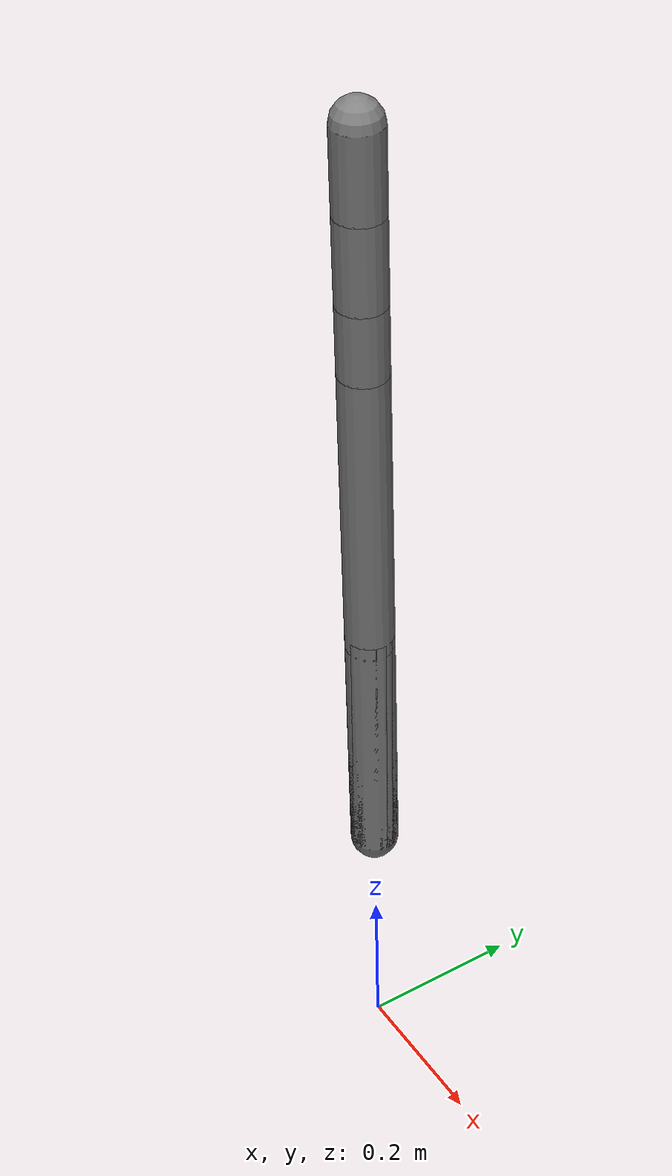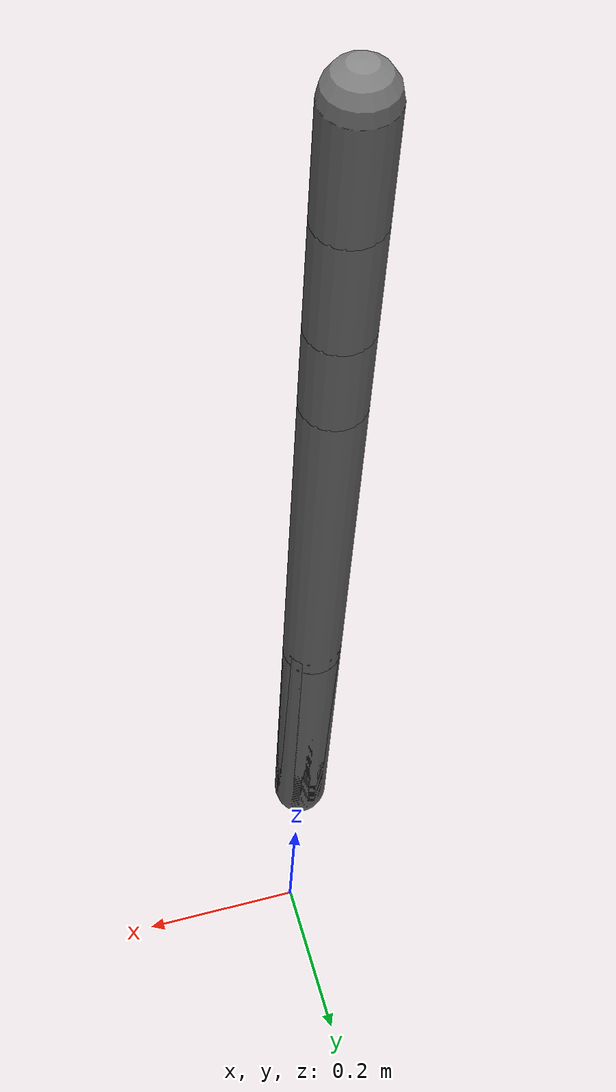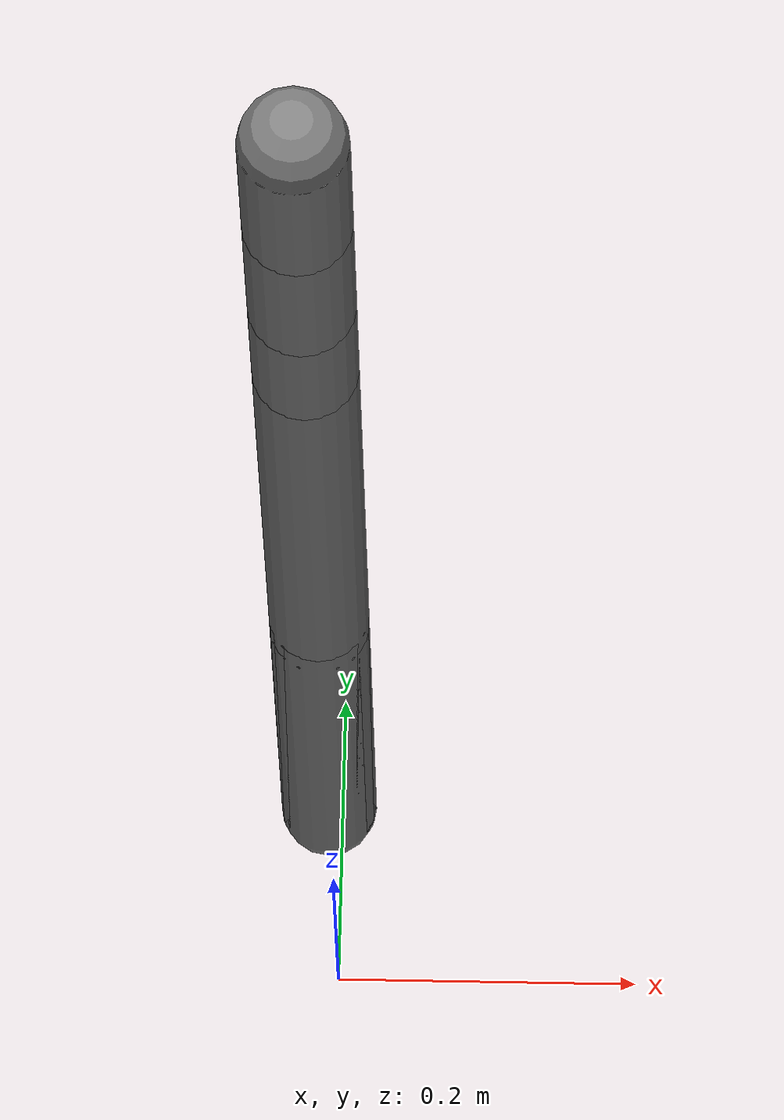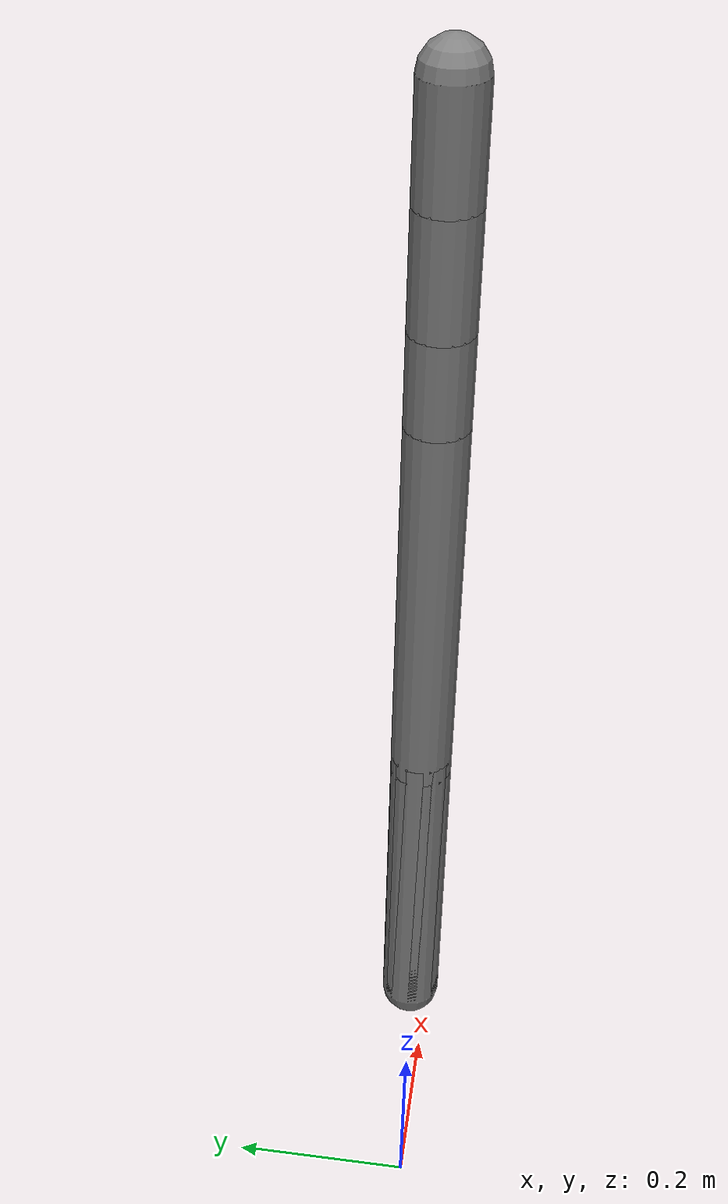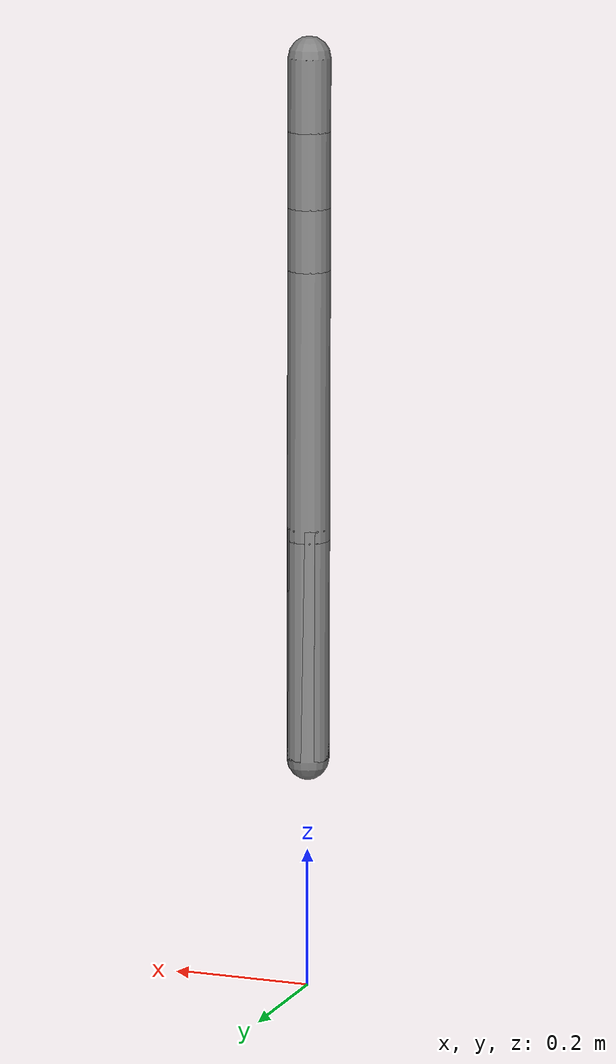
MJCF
<?xml version="1.0" ?>
<mujoco model="Panda7">
  <option timestep="0.002" gravity="0 0 -9.81"/>
  <compiler angle="degree"/>

  <default>
    <joint type="hinge" damping="0.1" limited="true" range="-170 170"/>
    <geom  type="capsule" size=".03 .15" density="2000"/>
    <motor ctrlrange="-87 87" gear="1"/>
  </default>

  <worldbody>
    <body name="link0" pos="0 0 0">
      <body name="link1" pos="0 0 0.333">
        <joint name="q1" axis="0 0 1"/>
        <geom fromto="0 0 0 0 0 0.333"/>
        <body name="link2" pos="0 0 0">
          <joint name="q2" axis="0 1 0"/>
          <geom fromto="0 0 0 0 0 0.316"/>
          <body name="link3" pos="0 0 0.316">
            <joint name="q3" axis="0 0 1"/>
            <geom fromto="0 0 0 0 0 0.384"/>
            <body name="link4" pos="0 0 0.384">
              <joint name="q4" axis="0 1 0"/>
              <geom fromto="0 0 0 0 0 0.088"/>
              <body name="link5" pos="0 0 0.088">
                <joint name="q5" axis="0 0 1"/>
                <geom fromto="0 0 0 0 0 0.107"/>
                <body name="link6" pos="0 0 0.107">
                  <joint name="q6" axis="0 1 0"/>
                  <geom fromto="0 0 0 0 0 0.103"/>
                  <site name="hand" pos="0 0 0.103" size="0.01"/>
                </body>
              </body>
            </body>
          </body>
        </body>
      </body>
    </body>
  </worldbody>

  <actuator>
    <motor joint="q1"/>
    <motor joint="q2"/>
    <motor joint="q3"/>
    <motor joint="q4"/>
    <motor joint="q5"/>
    <motor joint="q6"/>
    <motor joint="q6"/>
  </actuator>

  <sensor>
    <framepos objtype="site" objname="hand"/>
  </sensor>
</mujoco>
